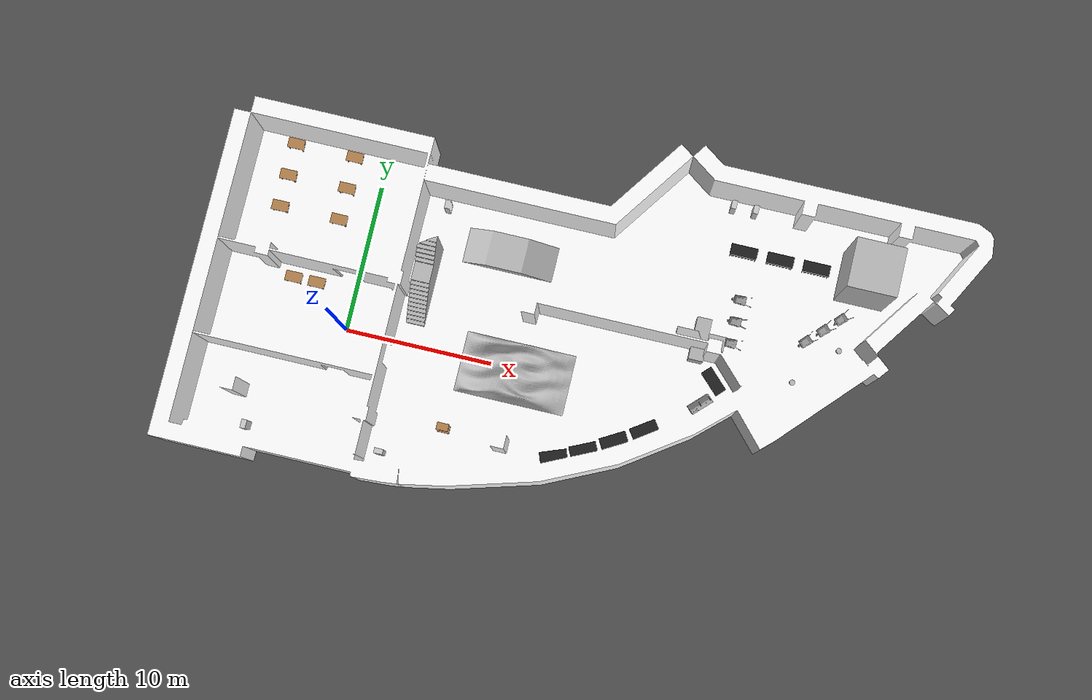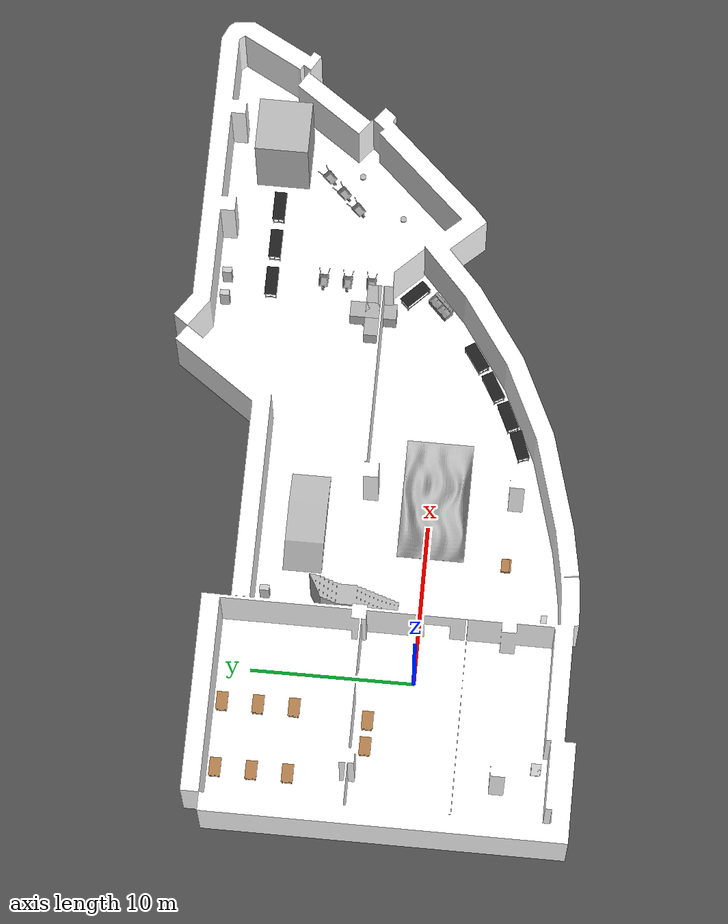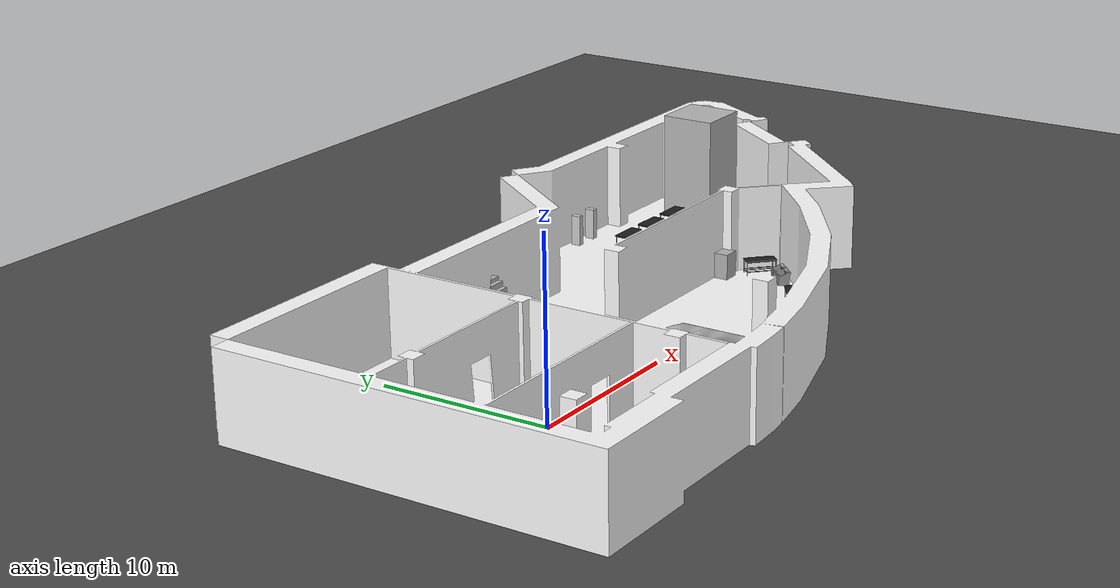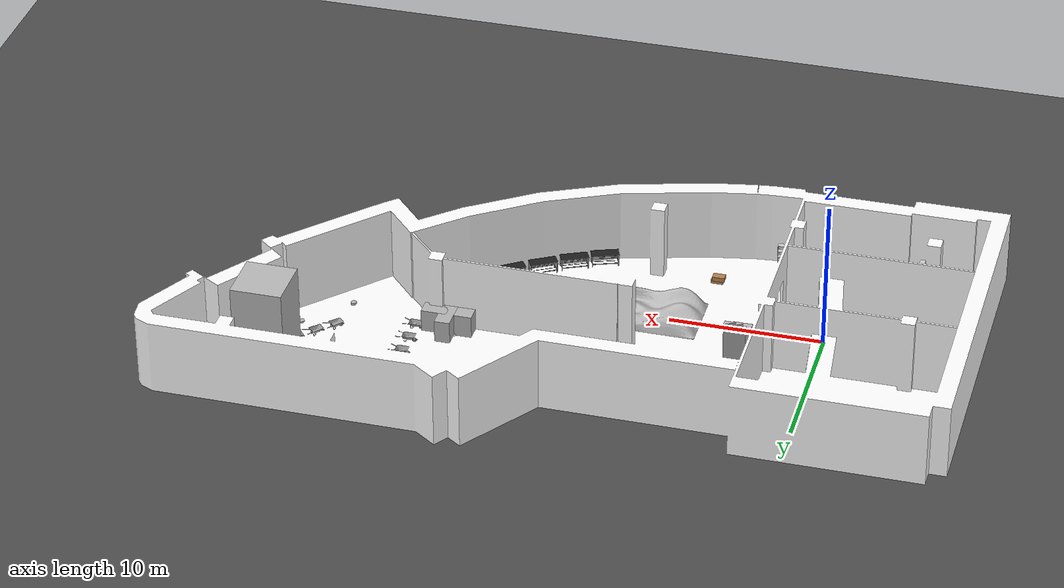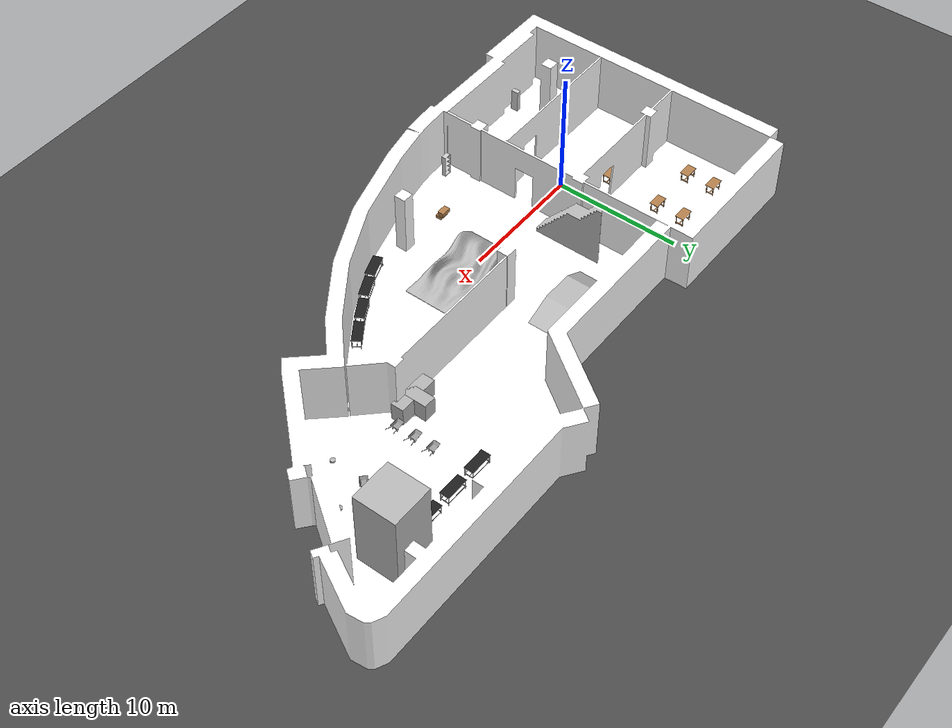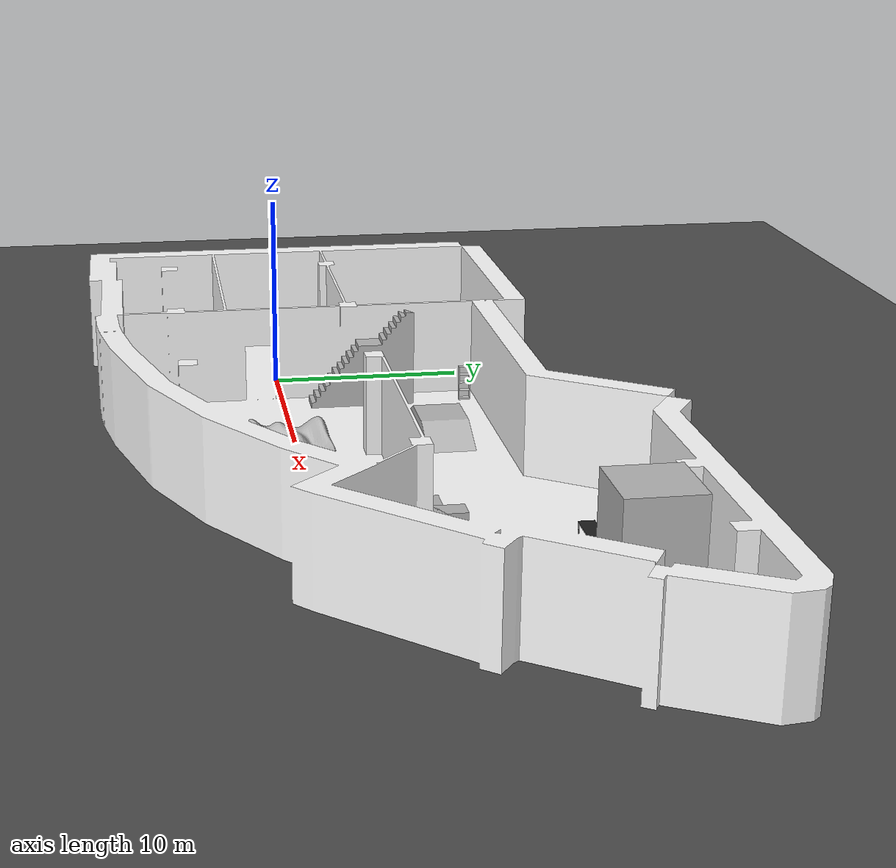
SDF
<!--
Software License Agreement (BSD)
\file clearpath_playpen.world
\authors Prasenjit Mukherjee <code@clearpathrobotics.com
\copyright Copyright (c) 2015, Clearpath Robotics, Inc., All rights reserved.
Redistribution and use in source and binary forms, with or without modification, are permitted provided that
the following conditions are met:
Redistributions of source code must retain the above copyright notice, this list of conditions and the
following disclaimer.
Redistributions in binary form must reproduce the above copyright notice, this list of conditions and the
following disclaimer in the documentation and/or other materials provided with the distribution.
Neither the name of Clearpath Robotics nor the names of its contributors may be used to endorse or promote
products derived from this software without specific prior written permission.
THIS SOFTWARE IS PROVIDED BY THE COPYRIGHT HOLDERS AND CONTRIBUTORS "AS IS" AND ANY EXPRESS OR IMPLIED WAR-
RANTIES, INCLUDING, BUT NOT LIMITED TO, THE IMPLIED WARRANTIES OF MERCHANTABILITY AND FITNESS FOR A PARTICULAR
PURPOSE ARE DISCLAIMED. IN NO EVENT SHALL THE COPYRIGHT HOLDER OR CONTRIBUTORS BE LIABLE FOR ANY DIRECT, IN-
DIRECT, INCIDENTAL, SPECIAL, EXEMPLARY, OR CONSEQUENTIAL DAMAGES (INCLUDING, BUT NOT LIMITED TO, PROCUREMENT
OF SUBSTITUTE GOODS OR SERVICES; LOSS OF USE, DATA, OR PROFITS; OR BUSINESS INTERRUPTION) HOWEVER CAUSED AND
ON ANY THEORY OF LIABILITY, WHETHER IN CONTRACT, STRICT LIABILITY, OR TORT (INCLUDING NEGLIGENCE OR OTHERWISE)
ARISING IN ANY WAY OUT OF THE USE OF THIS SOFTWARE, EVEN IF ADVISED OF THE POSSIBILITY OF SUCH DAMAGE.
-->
<sdf version="1.4">
 <world name="default">
  <light name="sun" type="directional">
   <pose>0 0 10 0 -0 0</pose>
   <diffuse>0.8 0.8 0.8 1</diffuse>
   <specular>0.2 0.2 0.2 1</specular>
   <attenuation>
    <range>10</range>
    <constant>0.9</constant>
    <linear>0.01</linear>
    <quadratic>0.001</quadratic>
   </attenuation>
   <direction>-0.5 0.1 -0.9</direction>
  </light>
  <model name="ground_plane">
   <static>1</static>
   <link name="link">
    <collision name="collision">
     <geometry><plane><normal>0 0 1</normal><size>100 100</size></plane></geometry>
     <surface><friction><ode><mu>100</mu><mu2>50</mu2></ode></friction></surface>
    </collision>
    <visual name="visual">
     <cast_shadows>0</cast_shadows>
     <geometry><plane><normal>0 0 1</normal><size>100 100</size></plane></geometry>
     <material>
      <script>
       <uri>model://asphalt_plane/materials/scripts</uri>
       <uri>model://asphalt_plane/materials/textures</uri>
       <name>vrc/asphalt</name>
      </script>
     </material>
    </visual>
    <velocity_decay><linear>0</linear><angular>0</angular></velocity_decay>
   </link>
  </model>
  <physics type="ode">
   <max_step_size>0.01</max_step_size>
   <real_time_factor>1</real_time_factor>
   <real_time_update_rate>100</real_time_update_rate>
   <gravity>0 0 -9.8</gravity>
  </physics>
  <scene><ambient>0.4 0.4 0.4 1</ambient><background>0.7 0.7 0.7 1</background><shadows>1</shadows></scene>
  <model name="stair">
   <include><static>true</static><uri>model://stair</uri><pose>3.8 1.4 0.05 0 0 -1.57</pose></include>
  </model>
  <model name="cupboard_01">
   <include><static>true</static><uri>model://cupboard</uri><pose>-4.8 -7.8 0.1 0 0 3.14</pose></include>
  </model>
  <model name="cupboard_02">
   <include><static>true</static><uri>model://cupboard</uri><pose>4.3 -7.5 0.1 0 0 1.57</pose></include>
  </model>
  <model name="cupboard_03">
   <include><static>true</static><uri>model://cupboard</uri><pose>4.8 9.6 0.1 0 0 0</pose></include>
  </model>
  <model name="cupboard_04">
   <include><static>true</static><uri>model://cupboard</uri><pose>23.5 14 0.1 0 0 0</pose></include>
  </model>
  <model name="cupboard_05">
   <include><static>true</static><uri>model://cupboard</uri><pose>25 14 0.1 0 0 0</pose></include>
  </model>
  <model name="work_brench_01">
   <include><static>true</static><uri>model://work_brench</uri><pose>24 11.5 0.1 0 0 0</pose></include>
  </model>
  <model name="work_brench_02">
   <include><static>true</static><uri>model://work_brench</uri><pose>26.5 11.5 0.1 0 0 0</pose></include>
  </model>
  <model name="work_brench_03">
   <include><static>true</static><uri>model://work_brench</uri><pose>29 11.5 0.1 0 0 0</pose></include>
  </model>
  <model name="work_brench_04">
   <include><static>true</static><uri>model://work_brench</uri><pose>24.4 3 0.1 0 0 -0.78</pose></include>
  </model>
  <model name="work_brench_05">
   <include><static>true</static><uri>model://work_brench</uri><pose>20.13 -2.27 0.1 0 0 0.6</pose></include>
  </model>
  <model name="work_brench_06">
   <include><static>true</static><uri>model://work_brench</uri><pose>18.3 -3.37 0.1 0 0 0.52</pose></include>
  </model>
  <model name="work_brench_07">
   <include><static>true</static><uri>model://work_brench</uri><pose>16.47 -4.37 0.1 0 0 0.44</pose></include>
  </model>
  <model name="work_brench_08">
   <include><static>true</static><uri>model://work_brench</uri><pose>14.64 -5.17 0.1 0 0 0.36</pose></include>
  </model>
  <model name="wood_table_01">
   <include><static>true</static><uri>model://wood_table</uri><pose>-4.7 2.3 0.05 0 0 0</pose></include>
  </model>
  <model name="wood_table_02">
   <include><static>true</static><uri>model://wood_table</uri><pose>-3.1 2.3 0.05 0 0 0</pose></include>
  </model>
  <model name="wood_table_03">
   <include><static>true</static><uri>model://wood_table</uri><pose>-6.8 6.8 0.05 0 0 0</pose></include>
  </model>
  <model name="wood_table_04">
   <include><static>true</static><uri>model://wood_table</uri><pose>-6.8 9 0.05 0 0 0</pose></include>
  </model>
  <model name="wood_table_05">
   <include><static>true</static><uri>model://wood_table</uri><pose>-6.8 11.2 0.05 0 0 0</pose></include>
  </model>
  <model name="wood_table_06">
   <include><static>true</static><uri>model://wood_table</uri><pose>-2.7 6.8 0.05 0 0 0</pose></include>
  </model>
  <model name="wood_table_07">
   <include><static>true</static><uri>model://wood_table</uri><pose>-2.7 9 0.05 0 0 0</pose></include>
  </model>
  <model name="wood_table_08">
   <include><static>true</static><uri>model://wood_table</uri><pose>-2.7 11.2 0.05 0 0 0</pose></include>
  </model>
  <model name="wood_table_01">
   <include><static>true</static><uri>model://sink</uri><pose>30 3.4 0.1 0 0 -2.3</pose></include>
  </model>
  <model name="wood_table_02">
   <include><static>true</static><uri>model://sink</uri><pose>32.6 6.2 0.1 0 0 -2.3</pose></include>
  </model>
  <model name="sink_2">
   <include><static>true</static><uri>model://sink-2</uri><pose>24.6 1.3 0.05 0 0 -2.356</pose></include>
  </model>
  <model name="u005">
   <include><static>true</static><uri>model://u005</uri><pose>-10 -10 0.05 0 0 0</pose></include>
  </model>
  <model name="Wood_1">
   <include><static>true</static><uri>model://small_wood</uri><pose>8 -5 0.15 0 0 0</pose></include>
  </model>
  <model name="Wood_2">
   <include><static>true</static><uri>model://small_wood</uri><pose>7.9 -4.9 0.45 0 0 0</pose></include>
  </model>
  <model name="wheel_borrow_01">
   <include><static>true</static><uri>model://wheel_borrow</uri><pose>25 8 0.05 0 0 0</pose></include>
  </model>
  <model name="wheel_borrow_02">
   <include><static>true</static><uri>model://wheel_borrow</uri><pose>25 6.5 0.05 0 0 0</pose></include>
  </model>
  <model name="wheel_borrow_03">
   <include><static>true</static><uri>model://wheel_borrow</uri><pose>25 5 0.05 0 0 0</pose></include>
  </model>
  <model name="wheel_borrow_04">
   <include><static>true</static><uri>model://wheel_borrow</uri><pose>32 8 0.05 0 0 0.785</pose></include>
  </model>
  <model name="wheel_borrow_05">
   <include><static>true</static><uri>model://wheel_borrow</uri><pose>31 7 0.05 0 0 0.785</pose></include>
  </model>
  <model name="wheel_borrow_06">
   <include><static>true</static><uri>model://wheel_borrow</uri><pose>30 6 0.05 0 0 0.785</pose></include>
  </model>
  <model name="floor_feature">
   <include><static>true</static><uri>model://floor_feature</uri><pose>15.5 1.8 0.05 0 0 0</pose></include>
  </model>
  <model name="house">
   <include><static>true</static><uri>model://house</uri><pose>23.3 4.66 0.05 0 0 3.14</pose></include>
  </model>
  <model name="incline_plane">
   <include><static>true</static><uri>model://incline_plane</uri><pose>6.5 6.3 0.1 0 0 0</pose></include>
  </model>
  <model name="building">
   <include><static>true</static><uri>model://building</uri><pose>31.5 9.5 0.1 0 0 0</pose></include>
  </model>
 </world>
</sdf>

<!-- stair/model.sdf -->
<sdf version='1.6'>
  <model name='work_brench'>
<link name='link'>
      <self_collide>0</self_collide>
      <kinematic>0</kinematic>
      <visual name='link'>
        <geometry>
<mesh>
<uri>model://stair/meshes/stair.dae </uri>
<scale>1 1 1</scale>

</mesh>

        </geometry>

        <cast_shadows>1</cast_shadows>
        <transparency>0</transparency>
      </visual>
      <collision name='Wall_84_Collision'>
        <laser_retro>0</laser_retro>
        <max_contacts>10</max_contacts>
        <geometry>

<mesh>
<uri>model://stair/meshes/stair.dae </uri>
<scale>1 1 1</scale>
</mesh>

        </geometry>
        <surface>
          <friction>
            <ode>
              <mu>1</mu>
              <mu2>1</mu2>
              <fdir1>0 0 0</fdir1>
              <slip1>0</slip1>
              <slip2>0</slip2>
            </ode>
            <torsional>
              <coefficient>1</coefficient>
              <patch_radius>0</patch_radius>
              <surface_radius>0</surface_radius>
              <use_patch_radius>1</use_patch_radius>
              <ode>
                <slip>0</slip>
              </ode>
            </torsional>
          </friction>
          <bounce>
            <restitution_coefficient>0</restitution_coefficient>
            <threshold>1e+06</threshold>
          </bounce>
          <contact>
            <collide_without_contact>0</collide_without_contact>
            <collide_without_contact_bitmask>1</collide_without_contact_bitmask>
            <collide_bitmask>1</collide_bitmask>
            <ode>
              <soft_cfm>0</soft_cfm>
              <soft_erp>0.2</soft_erp>
              <kp>1e+13</kp>
              <kd>1</kd>
              <max_vel>0.01</max_vel>
              <min_depth>0</min_depth>
            </ode>
            <bullet><uri>model://stair/meshes/base_link.STL </uri>
<scale>1 1 1</scale>
              <split_impulse>1</split_impulse>
              <split_impulse_penetration_threshold>-0.01</split_impulse_penetration_threshold>
              <soft_cfm>0</soft_cfm>
              <soft_erp>0.2</soft_erp>
              <kp>1e+13</kp>
              <kd>1</kd>
            </bullet>
          </contact>
        </surface>
      </collision>
    </link>
</model>
</sdf>

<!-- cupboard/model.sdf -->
<sdf version='1.6'>
  <model name='work_brench'>
<link name='link'>
      <self_collide>0</self_collide>
      <kinematic>0</kinematic>
      <visual name='link'>
        <geometry>
<mesh>
<uri>model://cupboard/meshes/cupboard.dae </uri>
<scale>1 1 1</scale>

</mesh>

        </geometry>

        <cast_shadows>1</cast_shadows>
        <transparency>0</transparency>
      </visual>
      <collision name='Wall_84_Collision'>
        <laser_retro>0</laser_retro>
        <max_contacts>10</max_contacts>
        <geometry>

<mesh>
<uri>model://cupboard/meshes/cupboard.dae </uri>
<scale>1 1 1</scale>
</mesh>

        </geometry>
        <surface>
          <friction>
            <ode>
              <mu>1</mu>
              <mu2>1</mu2>
              <fdir1>0 0 0</fdir1>
              <slip1>0</slip1>
              <slip2>0</slip2>
            </ode>
            <torsional>
              <coefficient>1</coefficient>
              <patch_radius>0</patch_radius>
              <surface_radius>0</surface_radius>
              <use_patch_radius>1</use_patch_radius>
              <ode>
                <slip>0</slip>
              </ode>
            </torsional>
          </friction>
          <bounce>
            <restitution_coefficient>0</restitution_coefficient>
            <threshold>1e+06</threshold>
          </bounce>
          <contact>
            <collide_without_contact>0</collide_without_contact>
            <collide_without_contact_bitmask>1</collide_without_contact_bitmask>
            <collide_bitmask>1</collide_bitmask>
            <ode>
              <soft_cfm>0</soft_cfm>
              <soft_erp>0.2</soft_erp>
              <kp>1e+13</kp>
              <kd>1</kd>
              <max_vel>0.01</max_vel>
              <min_depth>0</min_depth>
            </ode>
            <bullet><uri>model://stair/meshes/base_link.STL </uri>
<scale>1 1 1</scale>
              <split_impulse>1</split_impulse>
              <split_impulse_penetration_threshold>-0.01</split_impulse_penetration_threshold>
              <soft_cfm>0</soft_cfm>
              <soft_erp>0.2</soft_erp>
              <kp>1e+13</kp>
              <kd>1</kd>
            </bullet>
          </contact>
        </surface>
      </collision>
    </link>
</model>
</sdf>

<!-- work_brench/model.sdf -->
<sdf version='1.6'>
  <model name='work_brench'>
<link name='link'>
      <self_collide>0</self_collide>
      <kinematic>0</kinematic>
      <visual name='link'>
        <geometry>
<mesh>
<uri>model://work_brench/meshes/base_link.STL </uri>
<scale>1 1 1</scale>

</mesh>

        </geometry>
        <material>
          <script>

            <uri>file://media/materials/scripts/gazebo.material</uri>
            <name>Gazebo/Black</name>

          </script>

        </material>

        <cast_shadows>1</cast_shadows>
        <transparency>0</transparency>
      </visual>
      <collision name='Wall_84_Collision'>
        <laser_retro>0</laser_retro>
        <max_contacts>10</max_contacts>
        <geometry>

<mesh>
<uri>model://work_brench/meshes/base_link.STL </uri>
<scale>1 1 1</scale>
</mesh>

        </geometry>
        <surface>
          <friction>
            <ode>
              <mu>1</mu>
              <mu2>1</mu2>
              <fdir1>0 0 0</fdir1>
              <slip1>0</slip1>
              <slip2>0</slip2>
            </ode>
            <torsional>
              <coefficient>1</coefficient>
              <patch_radius>0</patch_radius>
              <surface_radius>0</surface_radius>
              <use_patch_radius>1</use_patch_radius>
              <ode>
                <slip>0</slip>
              </ode>
            </torsional>
          </friction>
          <bounce>
            <restitution_coefficient>0</restitution_coefficient>
            <threshold>1e+06</threshold>
          </bounce>
          <contact>
            <collide_without_contact>0</collide_without_contact>
            <collide_without_contact_bitmask>1</collide_without_contact_bitmask>
            <collide_bitmask>1</collide_bitmask>
            <ode>
              <soft_cfm>0</soft_cfm>
              <soft_erp>0.2</soft_erp>
              <kp>1e+13</kp>
              <kd>1</kd>
              <max_vel>0.01</max_vel>
              <min_depth>0</min_depth>
            </ode>
            <bullet><uri>model://stair/meshes/base_link.STL </uri>
<scale>1 1 1</scale>
              <split_impulse>1</split_impulse>
              <split_impulse_penetration_threshold>-0.01</split_impulse_penetration_threshold>
              <soft_cfm>0</soft_cfm>
              <soft_erp>0.2</soft_erp>
              <kp>1e+13</kp>
              <kd>1</kd>
            </bullet>
          </contact>
        </surface>
      </collision>
    </link>
</model>
</sdf>

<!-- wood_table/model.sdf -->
<sdf version='1.6'>
  <model name='wood_table'>
<link name='link'>
      <self_collide>0</self_collide>
      <kinematic>0</kinematic>
      <visual name='link'>
        <geometry>
<mesh>
<uri>model://wood_table/meshes/base_link.STL </uri>
<scale> 1 1 1 </scale>

</mesh>

        </geometry>
        <material>
          <script>

            <uri>file://media/materials/scripts/gazebo.material</uri>
            <name>Gazebo/Wood</name>

          </script>

        </material>
        <cast_shadows>1</cast_shadows>
        <transparency>0</transparency>
      </visual>
      <collision name='Wall_84_Collision'>
        <laser_retro>0</laser_retro>
        <max_contacts>10</max_contacts>
        <geometry>

<mesh>
<uri>model://wood_table/meshes/base_link.STL </uri>
<scale> 1 1 1 </scale>
</mesh>

        </geometry>
        <surface>
          <friction>
            <ode>
              <mu>1</mu>
              <mu2>1</mu2>
              <fdir1>0 0 0</fdir1>
              <slip1>0</slip1>
              <slip2>0</slip2>
            </ode>
            <torsional>
              <coefficient>1</coefficient>
              <patch_radius>0</patch_radius>
              <surface_radius>0</surface_radius>
              <use_patch_radius>1</use_patch_radius>
              <ode>
                <slip>0</slip>
              </ode>
            </torsional>
          </friction>
          <bounce>
            <restitution_coefficient>0</restitution_coefficient>
            <threshold>1e+06</threshold>
          </bounce>
          <contact>
            <collide_without_contact>0</collide_without_contact>
            <collide_without_contact_bitmask>1</collide_without_contact_bitmask>
            <collide_bitmask>1</collide_bitmask>
            <ode>
              <soft_cfm>0</soft_cfm>
              <soft_erp>0.2</soft_erp>
              <kp>1e+13</kp>
              <kd>1</kd>
              <max_vel>0.01</max_vel>
              <min_depth>0</min_depth>
            </ode>
            <bullet>
              <split_impulse>1</split_impulse>
              <split_impulse_penetration_threshold>-0.01</split_impulse_penetration_threshold>
              <soft_cfm>0</soft_cfm>
              <soft_erp>0.2</soft_erp>
              <kp>1e+13</kp>
              <kd>1</kd>
            </bullet>
          </contact>
        </surface>
      </collision>
    </link>
</model>
</sdf>

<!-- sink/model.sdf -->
<sdf version="1.6">
  <model name="reo2016/sink">
    <link name="1_link">
      <collision name="1_col">
        <geometry>
          <cylinder>
            <length>0.18</length>
            <radius>0.19</radius>
          </cylinder>
        </geometry>
      </collision>
      <visual name="1_vis">
        <geometry>
          <cylinder>
            <length>0.18</length>
            <radius>0.19</radius>
          </cylinder>
        </geometry>
      </visual>
      <pose>0 0 0 0 0 0</pose>
    </link>
    <link name="in_front_of">
      <virtual_volume name="in_front_of_vv">
        <geometry>
          <box>
            <size>0.6 1.0 0.01</size>
          </box>
        </geometry>
        <pose>-1.1 0.0 -0.865 0 0 0</pose>
      </virtual_volume>
    </link>
    <static>true</static>
  </model>
</sdf>

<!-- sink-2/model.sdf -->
<sdf version='1.6'>
  <model name='sink-2'>
<link name='link'>
      <self_collide>0</self_collide>
      <kinematic>0</kinematic>
      <visual name='link'>
        <geometry>
<mesh>
<uri>model://sink-2/meshes/base_link.STL </uri>
<scale>1 1 1</scale>

</mesh>

        </geometry>
        <material>
          <script>

            <uri>file://media/materials/scripts/gazebo.material</uri>
            <name>Gazebo/Grey</name>

          </script>

        </material>

        <cast_shadows>1</cast_shadows>
        <transparency>0</transparency>
      </visual>
      <collision name='Wall_84_Collision'>
        <laser_retro>0</laser_retro>
        <max_contacts>10</max_contacts>
        <geometry>

<mesh>
<uri>model://sink-2/meshes/base_link.STL </uri>
<scale>1 1 1</scale>
</mesh>

        </geometry>
        <surface>
          <friction>
            <ode>
              <mu>1</mu>
              <mu2>1</mu2>
              <fdir1>0 0 0</fdir1>
              <slip1>0</slip1>
              <slip2>0</slip2>
            </ode>
            <torsional>
              <coefficient>1</coefficient>
              <patch_radius>0</patch_radius>
              <surface_radius>0</surface_radius>
              <use_patch_radius>1</use_patch_radius>
              <ode>
                <slip>0</slip>
              </ode>
            </torsional>
          </friction>
          <bounce>
            <restitution_coefficient>0</restitution_coefficient>
            <threshold>1e+06</threshold>
          </bounce>
          <contact>
            <collide_without_contact>0</collide_without_contact>
            <collide_without_contact_bitmask>1</collide_without_contact_bitmask>
            <collide_bitmask>1</collide_bitmask>
            <ode>
              <soft_cfm>0</soft_cfm>
              <soft_erp>0.2</soft_erp>
              <kp>1e+13</kp>
              <kd>1</kd>
              <max_vel>0.01</max_vel>
              <min_depth>0</min_depth>
            </ode>
            <bullet><uri>model://stair/meshes/base_link.STL </uri>
<scale>1 1 1</scale>
              <split_impulse>1</split_impulse>
              <split_impulse_penetration_threshold>-0.01</split_impulse_penetration_threshold>
              <soft_cfm>0</soft_cfm>
              <soft_erp>0.2</soft_erp>
              <kp>1e+13</kp>
              <kd>1</kd>
            </bullet>
          </contact>
        </surface>
      </collision>
    </link>
</model>
</sdf>

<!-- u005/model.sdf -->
<sdf version='1.6'>
  <model name='u005'>
<link name='link'>
      <self_collide>0</self_collide>
      <kinematic>0</kinematic>
      <visual name='link'>
        <geometry>
<mesh>
<uri>model://u005/meshes/u005.dae </uri>
<scale>1 1 1</scale>

</mesh>

        </geometry>
        <material>
          <script>

            <uri>file://media/materials/scripts/construction.material</uri>
		<name> stainless </name>

          </script>
          <ambient>1 1 1 1</ambient>
          <diffuse>1 1 1 1</diffuse>
          <specular>0.2 0.2 0.2 1</specular>
          <emissive>0 0 0 1</emissive>
        </material>
        <cast_shadows>1</cast_shadows>
        <transparency>0</transparency>
      </visual>
      <collision name='Wall_84_Collision'>
        <laser_retro>0</laser_retro>
        <max_contacts>10</max_contacts>
        <geometry>

<mesh>
<uri>model://u005/meshes/u005.dae </uri>
<scale>1 1 1</scale>
</mesh>

        </geometry>
        <surface>
          <friction>
            <ode>
              <mu>1</mu>
              <mu2>1</mu2>
              <fdir1>0 0 0</fdir1>
              <slip1>0</slip1>
              <slip2>0</slip2>
            </ode>
            <torsional>
              <coefficient>1</coefficient>
              <patch_radius>0</patch_radius>
              <surface_radius>0</surface_radius>
              <use_patch_radius>1</use_patch_radius>
              <ode>
                <slip>0</slip>
              </ode>
            </torsional>
          </friction>
          <bounce>
            <restitution_coefficient>0</restitution_coefficient>
            <threshold>1e+06</threshold>
          </bounce>
          <contact>
            <collide_without_contact>0</collide_without_contact>
            <collide_without_contact_bitmask>1</collide_without_contact_bitmask>
            <collide_bitmask>1</collide_bitmask>
            <ode>
              <soft_cfm>0</soft_cfm>
              <soft_erp>0.2</soft_erp>
              <kp>1e+13</kp>
              <kd>1</kd>
              <max_vel>0.01</max_vel>
              <min_depth>0</min_depth>
            </ode>
            <bullet><uri>model://stair/meshes/base_link.STL </uri>
<scale>1 1 1</scale>
              <split_impulse>1</split_impulse>
              <split_impulse_penetration_threshold>-0.01</split_impulse_penetration_threshold>
              <soft_cfm>0</soft_cfm>
              <soft_erp>0.2</soft_erp>
              <kp>1e+13</kp>
              <kd>1</kd>
            </bullet>
          </contact>
        </surface>
      </collision>
    </link>
</model>
</sdf>

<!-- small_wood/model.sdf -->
<sdf version='1.6'>
  <model name='small_wood'>
<link name='Wall_84'>
      <self_collide>0</self_collide>
      <kinematic>0</kinematic>
      <visual name='Wall_84_Visual'>
        <geometry>
          <box>
            <size>0.8 0.5 0.3</size>
          </box>
        </geometry>
        <material>
          <script>

            <uri>file://media/materials/scripts/gazebo.material</uri>
            <name>Gazebo/Wood</name>

          </script>
          <ambient>1 1 1 1</ambient>
          <diffuse>1 1 1 1</diffuse>
          <specular>0.2 0.2 0.2 1</specular>
          <emissive>0 0 0 1</emissive>
        </material>
        <cast_shadows>1</cast_shadows>
        <transparency>0</transparency>
      </visual>
      <collision name='Wall_84_Collision'>
        <laser_retro>0</laser_retro>
        <max_contacts>10</max_contacts>
        <geometry>
          <box>
            <size>0.8 0.5 0.3</size>
          </box>
        </geometry>
        <surface>
          <friction>
            <ode>
              <mu>1</mu>
              <mu2>1</mu2>
              <fdir1>0 0 0</fdir1>
              <slip1>0</slip1>
              <slip2>0</slip2>
            </ode>
            <torsional>
              <coefficient>1</coefficient>
              <patch_radius>0</patch_radius>
              <surface_radius>0</surface_radius>
              <use_patch_radius>1</use_patch_radius>
              <ode>
                <slip>0</slip>
              </ode>
            </torsional>
          </friction>
          <bounce>
            <restitution_coefficient>0</restitution_coefficient>
            <threshold>1e+06</threshold>
          </bounce>
          <contact>
            <collide_without_contact>0</collide_without_contact>
            <collide_without_contact_bitmask>1</collide_without_contact_bitmask>
            <collide_bitmask>1</collide_bitmask>
            <ode>
              <soft_cfm>0</soft_cfm>
              <soft_erp>0.2</soft_erp>
              <kp>1e+13</kp>
              <kd>1</kd>
              <max_vel>0.01</max_vel>
              <min_depth>0</min_depth>
            </ode>
            <bullet>
              <split_impulse>1</split_impulse>
              <split_impulse_penetration_threshold>-0.01</split_impulse_penetration_threshold>
              <soft_cfm>0</soft_cfm>
              <soft_erp>0.2</soft_erp>
              <kp>1e+13</kp>
              <kd>1</kd>
            </bullet>
          </contact>
        </surface>
      </collision>
    </link>
</model>
</sdf>

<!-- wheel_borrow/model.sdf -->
<sdf version='1.6'>
  <model name='wheel_borrow'>
<link name='link'>
      <self_collide>0</self_collide>
      <kinematic>0</kinematic>
      <visual name='link'>
        <geometry>
<mesh>
<uri>model://wheel_borrow/meshes/base_link.STL </uri>
<scale> 5 5 5 </scale>

</mesh>

        </geometry>
        <material>
          <script>

            <uri>file://media/materials/scripts/gazebo.material</uri>
            <name>Gazebo/Grey</name>

          </script>

        </material>
        <cast_shadows>1</cast_shadows>
        <transparency>0</transparency>
      </visual>
      <collision name='Wall_84_Collision'>
        <laser_retro>0</laser_retro>
        <max_contacts>10</max_contacts>
        <geometry>

<mesh>
<uri>model://wheel_borrow/meshes/base_link.STL </uri>
<scale> 5 5 5 </scale>
</mesh>

        </geometry>
        <surface>
          <friction>
            <ode>
              <mu>1</mu>
              <mu2>1</mu2>
              <fdir1>0 0 0</fdir1>
              <slip1>0</slip1>
              <slip2>0</slip2>
            </ode>
            <torsional>
              <coefficient>1</coefficient>
              <patch_radius>0</patch_radius>
              <surface_radius>0</surface_radius>
              <use_patch_radius>1</use_patch_radius>
              <ode>
                <slip>0</slip>
              </ode>
            </torsional>
          </friction>
          <bounce>
            <restitution_coefficient>0</restitution_coefficient>
            <threshold>1e+06</threshold>
          </bounce>
          <contact>
            <collide_without_contact>0</collide_without_contact>
            <collide_without_contact_bitmask>1</collide_without_contact_bitmask>
            <collide_bitmask>1</collide_bitmask>
            <ode>
              <soft_cfm>0</soft_cfm>
              <soft_erp>0.2</soft_erp>
              <kp>1e+13</kp>
              <kd>1</kd>
              <max_vel>0.01</max_vel>
              <min_depth>0</min_depth>
            </ode>
            <bullet>
              <split_impulse>1</split_impulse>
              <split_impulse_penetration_threshold>-0.01</split_impulse_penetration_threshold>
              <soft_cfm>0</soft_cfm>
              <soft_erp>0.2</soft_erp>
              <kp>1e+13</kp>
              <kd>1</kd>
            </bullet>
          </contact>
        </surface>
      </collision>
    </link>
</model>
</sdf>

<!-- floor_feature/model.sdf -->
<sdf version='1.6'>
  <model name='work_brench'>
<link name='link'>
      <self_collide>0</self_collide>
      <kinematic>0</kinematic>
      <visual name='link'>
        <geometry>
<mesh>
<uri>model://floor_feature/meshes/floor_feature.dae </uri>
<scale>15 35 30</scale>

</mesh>

        </geometry>

        <cast_shadows>1</cast_shadows>
        <transparency>0</transparency>
      </visual>
      <collision name='Wall_84_Collision'>
        <laser_retro>0</laser_retro>
        <max_contacts>10</max_contacts>
        <geometry>

<mesh>
<uri>model://floor_feature/meshes/floor_feature.dae</uri>
<scale>15 35 30</scale>
</mesh>

        </geometry>
        <surface>
          <friction>
            <ode>
              <mu>1</mu>
              <mu2>1</mu2>
              <fdir1>0 0 0</fdir1>
              <slip1>0</slip1>
              <slip2>0</slip2>
            </ode>
            <torsional>
              <coefficient>1</coefficient>
              <patch_radius>0</patch_radius>
              <surface_radius>0</surface_radius>
              <use_patch_radius>1</use_patch_radius>
              <ode>
                <slip>0</slip>
              </ode>
            </torsional>
          </friction>
          <bounce>
            <restitution_coefficient>0</restitution_coefficient>
            <threshold>1e+06</threshold>
          </bounce>
          <contact>
            <collide_without_contact>0</collide_without_contact>
            <collide_without_contact_bitmask>1</collide_without_contact_bitmask>
            <collide_bitmask>1</collide_bitmask>
            <ode>
              <soft_cfm>0</soft_cfm>
              <soft_erp>0.2</soft_erp>
              <kp>1e+13</kp>
              <kd>1</kd>
              <max_vel>0.01</max_vel>
              <min_depth>0</min_depth>
            </ode>
            <bullet><uri>model://stair/meshes/base_link.STL <scale> 50 50 50 </scale></uri>
<scale>1 1 1</scale>
              <split_impulse>1</split_impulse>
              <split_impulse_penetration_threshold>-0.01</split_impulse_penetration_threshold>
              <soft_cfm>0</soft_cfm>
              <soft_erp>0.2</soft_erp>
              <kp>1e+13</kp>
              <kd>1</kd>
            </bullet>
          </contact>
        </surface>
      </collision>
    </link>
</model>
</sdf>

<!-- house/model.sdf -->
<sdf version='1.6'>
  <model name='box_0'>
  <pose>26.280958351717622 3.5985589132294855 1.5 0 0 0</pose>
  <link name='box_link'>
    <inertial>
      <inertia>
        <ixx>0.16666</ixx>
        <ixy>0</ixy>
        <ixz>0</ixz>
        <iyy>0.16666</iyy>
        <iyz>0</iyz>
        <izz>0.16666</izz>
      </inertia>
      <mass>1</mass>
      <pose>0 0 0 0 0 0</pose>
    </inertial>
    <collision name='box_collision'>
      <geometry>
        <box>
          <size>3.2999999999999998 1 3</size>
        </box>
      </geometry>
      <surface>
        <friction>
          <ode/>
        </friction>
        <bounce/>
        <contact/>
      </surface>
    </collision>
    <visual name='box_visual'>
      <geometry>
        <box>
          <size>3.2999999999999998 1 3</size>
        </box>
      </geometry>
      <material>
        <ambient>0.300000012 0.300000012 0.300000012 1</ambient>
        <diffuse>0.699999988 0.699999988 0.699999988 1</diffuse>
        <specular>1 1 1 1</specular>
      </material>
    </visual>
    <pose>0 0 0 0 0 0</pose>
    <enable_wind>false</enable_wind>
  </link>
  <static>false</static>
  <self_collide>false</self_collide>
</model>
<model name='box_1'>
  <pose>25.124389120262173 5.530684439663352 1.5 0 0 0</pose>
  <link name='box_link'>
    <inertial>
      <inertia>
        <ixx>0.16666</ixx>
        <ixy>0</ixy>
        <ixz>0</ixz>
        <iyy>0.16666</iyy>
        <iyz>0</iyz>
        <izz>0.16666</izz>
      </inertia>
      <mass>1</mass>
      <pose>0 0 0 0 0 0</pose>
    </inertial>
    <collision name='box_collision'>
      <geometry>
        <box>
          <size>1 2.8999999999999999 3</size>
        </box>
      </geometry>
      <surface>
        <friction>
          <ode/>
        </friction>
        <bounce/>
        <contact/>
      </surface>
    </collision>
    <visual name='box_visual'>
      <geometry>
        <box>
          <size>1 2.8999999999999999 3</size>
        </box>
      </geometry>
      <material>
        <ambient>0.300000012 0.300000012 0.300000012 1</ambient>
        <diffuse>0.699999988 0.699999988 0.699999988 1</diffuse>
        <specular>1 1 1 1</specular>
      </material>
    </visual>
    <pose>0 0 0 0 0 0</pose>
    <enable_wind>false</enable_wind>
  </link>
  <static>false</static>
  <self_collide>false</self_collide>
</model>
<model name='box_2'>
  <pose>26.27839296780649 7.458628188131829 1.5 0 0 0</pose>
  <link name='box_link'>
    <inertial>
      <inertia>
        <ixx>0.16666</ixx>
        <ixy>0</ixy>
        <ixz>0</ixz>
        <iyy>0.16666</iyy>
        <iyz>0</iyz>
        <izz>0.16666</izz>
      </inertia>
      <mass>1</mass>
      <pose>0 0 0 0 0 0</pose>
    </inertial>
    <collision name='box_collision'>
      <geometry>
        <box>
          <size>3.2999999999999998 1 3</size>
        </box>
      </geometry>
      <surface>
        <friction>
          <ode/>
        </friction>
        <bounce/>
        <contact/>
      </surface>
    </collision>
    <visual name='box_visual'>
      <geometry>
        <box>
          <size>3.2999999999999998 1 3</size>
        </box>
      </geometry>
      <material>
        <ambient>0.300000012 0.300000012 0.300000012 1</ambient>
        <diffuse>0.699999988 0.699999988 0.699999988 1</diffuse>
        <specular>1 1 1 1</specular>
      </material>
    </visual>
    <pose>0 0 0 0 0 0</pose>
    <enable_wind>false</enable_wind>
  </link>
  <static>false</static>
  <self_collide>false</self_collide>
</model>
<model name='cone'>
  <pose>26.316259560213716 5.412128458975335 4.025538444519043 0 0 0</pose>
  <link name='cone_link'>
    <inertial>
      <inertia>
        <ixx>0.074999999999999997</ixx>
        <ixy>0</ixy>
        <ixz>0</ixz>
        <iyy>0.074999999999999997</iyy>
        <iyz>0</iyz>
        <izz>0.074999999999999997</izz>
      </inertia>
      <mass>1</mass>
      <pose>0 0 0 0 0 0</pose>
    </inertial>
    <collision name='cone_collision'>
      <geometry>
        <cone>
          <radius>2.5</radius>
          <length>2</length>
        </cone>
      </geometry>
      <surface>
        <friction>
          <ode/>
        </friction>
        <bounce/>
        <contact/>
      </surface>
    </collision>
    <visual name='cone_visual'>
      <geometry>
        <cone>
          <radius>1.7</radius>
          <length>2</length>
        </cone>
      </geometry>
      <material>
        <ambient>0.300000012 0.300000012 0.300000012 1</ambient>
        <diffuse>0.699999988 0.699999988 0.699999988 1</diffuse>
        <specular>1 1 1 1</specular>
      </material>
    </visual>
    <pose>0 0 0 0 0 0</pose>
    <enable_wind>false</enable_wind>
  </link>
  <static>false</static>
  <self_collide>false</self_collide>
</model>
</sdf>

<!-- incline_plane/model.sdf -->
<sdf version='1.6'>
  <model name='work_brench'>
<link name='link'>
      <self_collide>0</self_collide>
      <kinematic>0</kinematic>
      <visual name='link'>
        <geometry>
<mesh>
<uri>model://incline_plane/meshes/incline_plane.dae </uri>
<scale>5 6 8</scale>

</mesh>

        </geometry>

        <cast_shadows>1</cast_shadows>
        <transparency>0</transparency>
      </visual>
      <collision name='Wall_84_Collision'>
        <laser_retro>0</laser_retro>
        <max_contacts>10</max_contacts>
        <geometry>

<mesh>
<uri>model://incline_plane/meshes/incline_plane.dae </uri>
<scale>5 6 8</scale>
</mesh>

        </geometry>
        <surface>
          <friction>
            <ode>
              <mu>1</mu>
              <mu2>1</mu2>
              <fdir1>0 0 0</fdir1>
              <slip1>0</slip1>
              <slip2>0</slip2>
            </ode>
            <torsional>
              <coefficient>1</coefficient>
              <patch_radius>0</patch_radius>
              <surface_radius>0</surface_radius>
              <use_patch_radius>1</use_patch_radius>
              <ode>
                <slip>0</slip>
              </ode>
            </torsional>
          </friction>
          <bounce>
            <restitution_coefficient>0</restitution_coefficient>
            <threshold>1e+06</threshold>
          </bounce>
          <contact>
            <collide_without_contact>0</collide_without_contact>
            <collide_without_contact_bitmask>1</collide_without_contact_bitmask>
            <collide_bitmask>1</collide_bitmask>
            <ode>
              <soft_cfm>0</soft_cfm>
              <soft_erp>0.2</soft_erp>
              <kp>1e+13</kp>
              <kd>1</kd>
              <max_vel>0.01</max_vel>
              <min_depth>0</min_depth>
            </ode>
            <bullet><uri>model://stair/meshes/base_link.STL </uri>
<scale>1 1 1</scale>
              <split_impulse>1</split_impulse>
              <split_impulse_penetration_threshold>-0.01</split_impulse_penetration_threshold>
              <soft_cfm>0</soft_cfm>
              <soft_erp>0.2</soft_erp>
              <kp>1e+13</kp>
              <kd>1</kd>
            </bullet>
          </contact>
        </surface>
      </collision>
    </link>
</model>
</sdf>

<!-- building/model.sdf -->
<sdf version='1.6'>
  <model name='building'>
<link name='link'>
      <self_collide>0</self_collide>
      <kinematic>0</kinematic>
      <visual name='link'>
        <geometry>
<mesh>
<uri>model://building/meshes/building.dae </uri>
<scale>1 1 1</scale>

</mesh>

        </geometry>

        <cast_shadows>1</cast_shadows>
        <transparency>0</transparency>
      </visual>
      <collision name='Wall_84_Collision'>
        <laser_retro>0</laser_retro>
        <max_contacts>10</max_contacts>
        <geometry>

<mesh>
<uri>model://building/meshes/building.dae </uri>
<scale>1 1 1</scale>
</mesh>

        </geometry>
        <surface>
          <friction>
            <ode>
              <mu>1</mu>
              <mu2>1</mu2>
              <fdir1>0 0 0</fdir1>
              <slip1>0</slip1>
              <slip2>0</slip2>
            </ode>
            <torsional>
              <coefficient>1</coefficient>
              <patch_radius>0</patch_radius>
              <surface_radius>0</surface_radius>
              <use_patch_radius>1</use_patch_radius>
              <ode>
                <slip>0</slip>
              </ode>
            </torsional>
          </friction>
          <bounce>
            <restitution_coefficient>0</restitution_coefficient>
            <threshold>1e+06</threshold>
          </bounce>
          <contact>
            <collide_without_contact>0</collide_without_contact>
            <collide_without_contact_bitmask>1</collide_without_contact_bitmask>
            <collide_bitmask>1</collide_bitmask>
            <ode>
              <soft_cfm>0</soft_cfm>
              <soft_erp>0.2</soft_erp>
              <kp>1e+13</kp>
              <kd>1</kd>
              <max_vel>0.01</max_vel>
              <min_depth>0</min_depth>
            </ode>
            <bullet><uri>model://stair/meshes/base_link.STL </uri>
<scale>1 1 1</scale>
              <split_impulse>1</split_impulse>
              <split_impulse_penetration_threshold>-0.01</split_impulse_penetration_threshold>
              <soft_cfm>0</soft_cfm>
              <soft_erp>0.2</soft_erp>
              <kp>1e+13</kp>
              <kd>1</kd>
            </bullet>
          </contact>
        </surface>
      </collision>
    </link>
</model>
</sdf>
